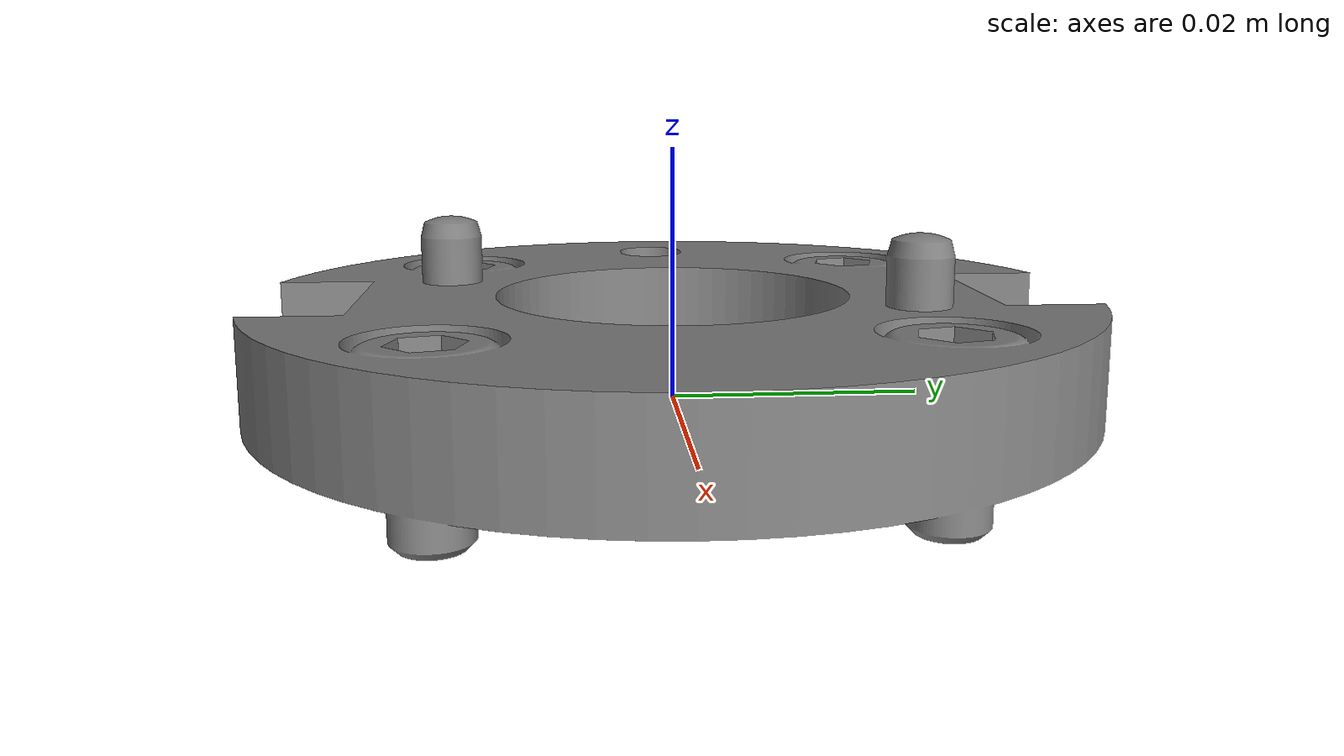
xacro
<?xml version="1.0"?>
<robot name="connector_tcp">
    <link name="conector_tcp">
        <visual>
            <origin xyz="0 0 0" rpy="0 -0 0" />
            <geometry>
                <mesh filename="package://robot_description/meshes/conector_tcp.stl"/>
            </geometry>
            <material name="conector_tcp_material">
                <color rgba="0.50196078431372548323 0.50196078431372548323 0.50196078431372548323 1.0"/>
            </material>
        </visual>
        <collision>
            <origin xyz="0 0 0" rpy="0 -0 0" />
            <geometry>
                <mesh filename="package:///conector_tcp.stl"/>
            </geometry>
        </collision>
        <inertial>
            <origin xyz="-3.517291045154929735e-05 -3.2279048367335561479e-13 0.0037918602136445983021" rpy="0 0 0"/>
            <mass value="0.17533775221511888054" />
            <inertia
                ixx="4.7634466232920521231e-05" ixy="-1.9565925084430388539e-07"  ixz="-1.9723444917313040303e-07"
                iyy="6.3135044798116074396e-05" iyz="1.9739250304519301961e-16"
                izz="0.00010757461602015991483" />
        </inertial>
    </link>

</robot>
